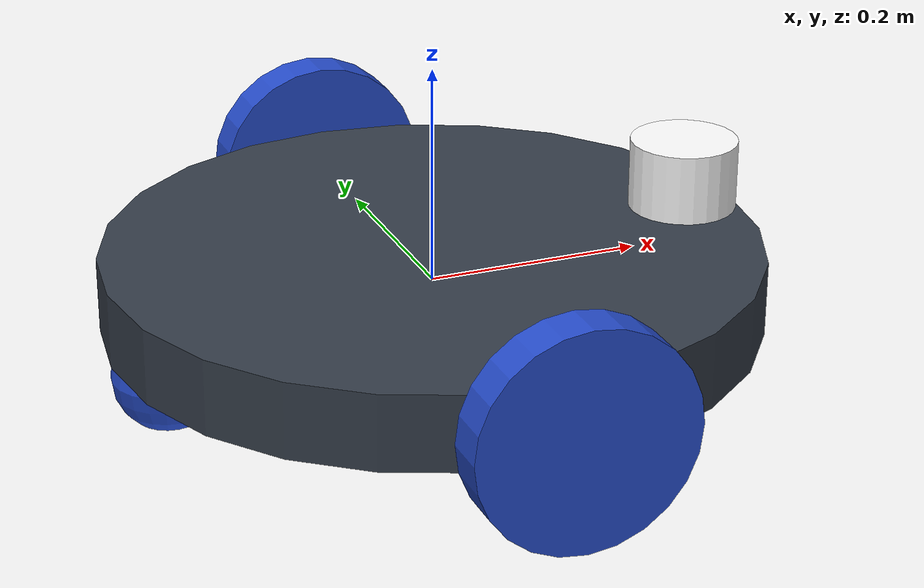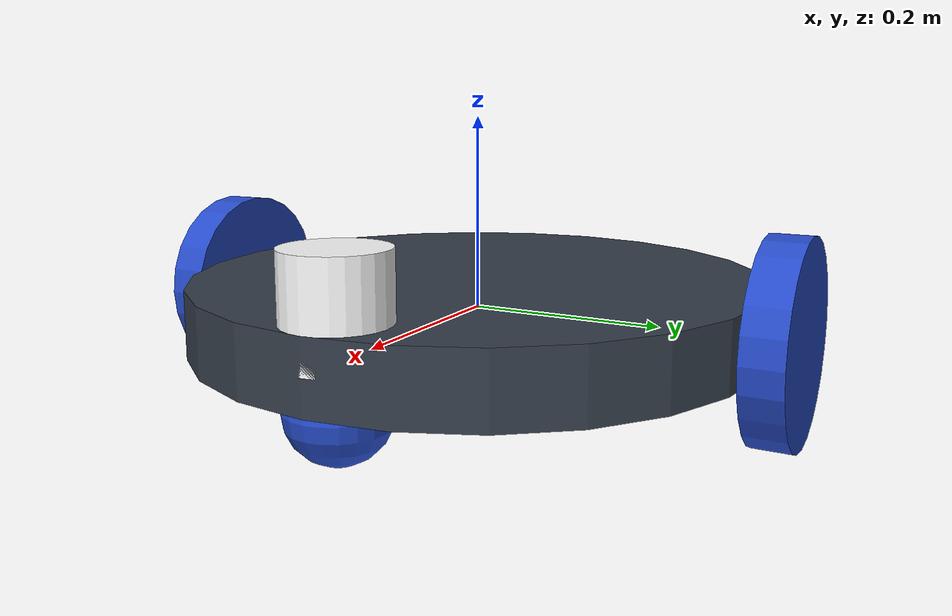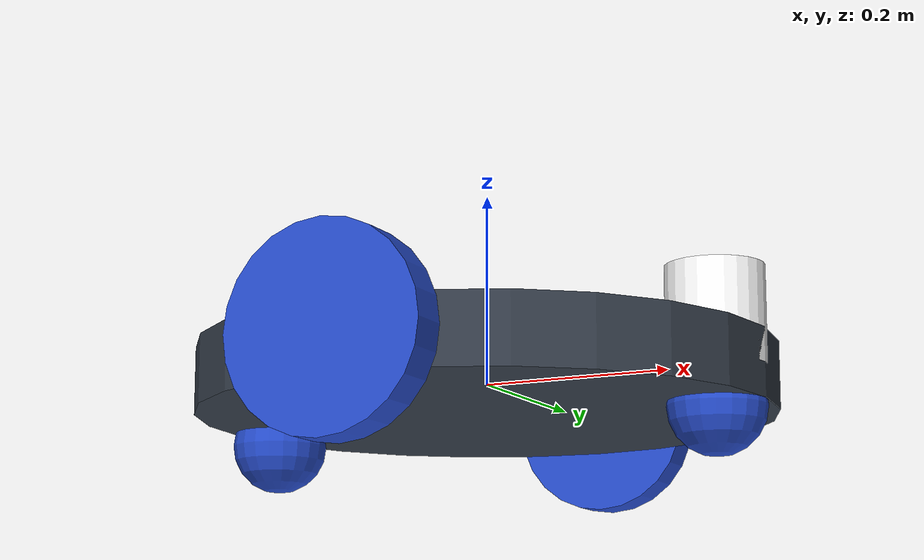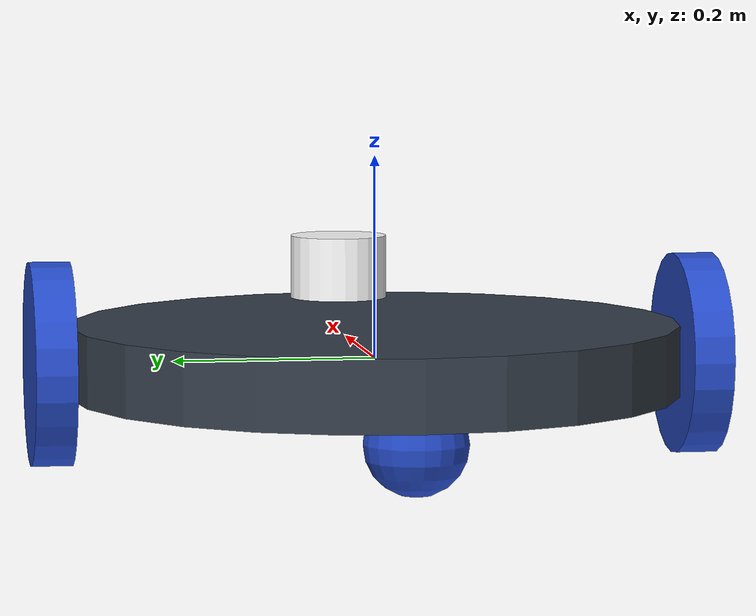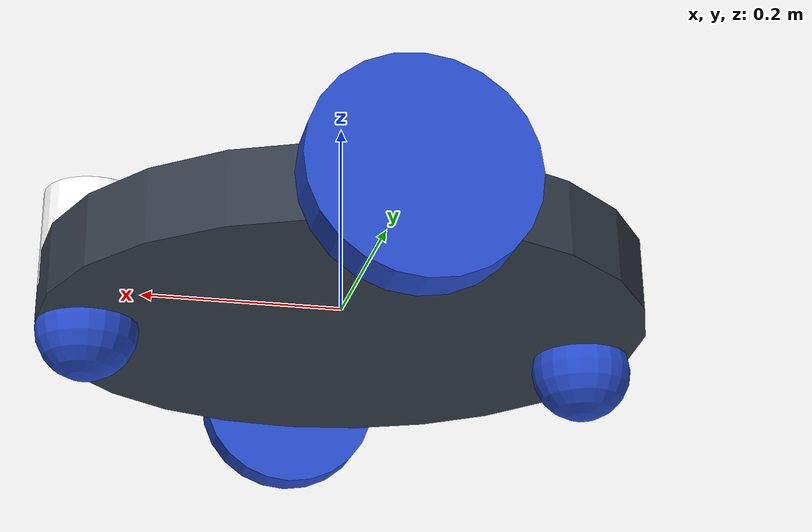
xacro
<?xml version="1.0"?>
<robot name="WRO" xmlns:xacro="https://www.ros.org/wiki/xacro" >

    <xacro:include filename="$(find robot_description)/urdf/materials.xacro" />
    <xacro:include filename="$(find robot_description)/urdf/robot.gazebo" />
    <xacro:include filename="$(find robot_description)/urdf/macro.xacro" />

    <!-- 1st Link-->>
    <link name="link_chassis">
        <pose>0 0 0.1 0 0 0</pose>

        <inertial>
            <!--inertia ixx="${mass*(3*r*r+l*l)/12}" ixy = "0" ixz = "0"
                        iyy="${mass*(3*r*r+l*l)/12}" iyz = "0" izz="${mass*(r*r)/2}" /-->
            <mass value="15"/>
            <origin rpy="0 0 0" xyz="0 0 0.1"/>
            <inertia ixx="0.2290833333" ixy = "0" ixz = "0"
                     iyy="0.2290833333" iyz = "0"
                     izz="0.45" />
        </inertial>

        <collision name="collision_chassis">
            <geometry>
                <cylinder length="0.07" radius="0.3"/>
            </geometry>
        </collision>

        <visual>
            <origin rpy="0 0 0" xyz="0 0 0"/>
            <geometry>
                <cylinder length="0.07" radius="0.3"/>
            </geometry>
            <material name="blue"/>
        </visual>
    </link>

    <link name="link_caster">
        <inertial>
            <mass value="3"/>
            <origin rpy="0 0 0" xyz="0 0 0"/>
            <inertia ixx="0.003" ixy = "0" ixz = "0"
                     iyy="0.003" iyz = "0"
                     izz="0.003" />
        </inertial>
    <!-- caster front -->
        <collision name="caster_back_collision">
          <origin rpy=" 0 0 0" xyz="0 0 0"/>
          <geometry>
            <sphere radius="0.05"/>
          </geometry>
          <surface>
            <friction>
              <ode>
                <mu>0</mu>
                <mu2>0</mu2>
                <slip1>1</slip1>
                <slip2>1</slip2>
              </ode>
            </friction>
          </surface>

        </collision>
        <visual name="caster_back_visual">
          <origin rpy=" 0 0 0" xyz="0 0 0"/>
          <geometry>
            <sphere radius="0.05"/>
          </geometry>
        </visual>
    </link>

    <joint name="caster_back_joint" type="fixed">
      <parent link="link_chassis"/>
      <child link="link_caster"/>
      <origin rpy="0 0 0" xyz="-0.25 0 -0.05"/>
    </joint>

    <link name="link_caster_front">
        <inertial>
            <mass value="1"/>
            <origin rpy="0 0 0" xyz="0 0 0"/>
            <inertia ixx="0.002" ixy = "0" ixz = "0"
                     iyy="0.002" iyz = "0"
                     izz="0.002" />
        </inertial>
    <!-- caster front -->
        <collision name="caster_front_collision">
          <origin rpy=" 0 0 0" xyz="0 0 0"/>
          <geometry>
            <sphere radius="0.05"/>
          </geometry>
          <surface>
            <friction>
              <ode>
                <mu>0</mu>
                <mu2>0</mu2>
                <slip1>1</slip1>
                <slip2>1</slip2>
              </ode>
            </friction>
          </surface>

        </collision>
        <visual name="caster_front_visual">
          <origin rpy=" 0 0 0" xyz="0 0 0"/>
          <geometry>
            <sphere radius="0.05"/>
          </geometry>
        </visual>
    </link>

    <joint name="caster_front_joint" type="fixed">
      <parent link="link_chassis"/>
      <child link="link_caster_front"/>
      <origin rpy="0 0 0" xyz="0.25 0 -0.04"/>
    </joint>

  <!-- Create Sensor link and joint -->
  <xacro:link_sensor name="sensor_laser" />
  <xacro:joint_Sensor name="Sensor_joint"  child="sensor_laser" />

  <!-- Create right wheel -->
  <xacro:link_wheel name="link_right_wheel" />
  <xacro:joint_wheel name="joint_right_wheel"  child="link_right_wheel"  origin_xyz="0 -0.32 0"  />

	 <!-- Create left wheel -->
  <xacro:link_wheel name="link_left_wheel" />
  <xacro:joint_wheel name="joint_left_wheel"   child="link_left_wheel"   origin_xyz="0 0.32 0"  />

</robot>

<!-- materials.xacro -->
<robot name="WRO" xmlns:xacro="https://www.ros.org/wiki/xacro" >
  <material name="black">
    <color rgba="0.0 0.0 0.0 1.0"/>
  </material>
  <material name="blue">
    <color rgba="0.203125 0.23828125 0.28515625 1.0"/>
  </material>
  <material name="green">
    <color rgba="0.0 0.8 0.0 1.0"/>
  </material>
  <material name="grey">
    <color rgba="0.2 0.2 0.2 1.0"/>
  </material>
  <material name="orange">
    <color rgba="1.0 0.423529411765 0.0392156862745 1.0"/>
  </material>
  <material name="brown">
    <color rgba="0.870588235294 0.811764705882 0.764705882353 1.0"/>
  </material>
  <material name="red">
    <color rgba="0.80078125 0.12890625 0.1328125 1.0"/>
  </material>
  <material name="white">
    <color rgba="1.0 1.0 1.0 1.0"/>
  </material>
</robot>

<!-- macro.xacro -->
<robot xmlns:xacro="http://www.ros.org/wiki/xacro">
    <xacro:macro name="link_wheel" params="name">
        <link name="${name}">
            <inertial>
              <mass value="0.2"/>
              <origin rpy="0 1.5707 1.5707" xyz="0 0 0"/>
              <inertia ixx="0.000526666666667" ixy="0" ixz="0" iyy="0.000526666666667" iyz="0" izz="0.001"/>
            </inertial>
            <collision name="link_right_wheel_collision">
              <origin rpy="0 1.5707 1.5707" xyz="0 0 0"/>
              <geometry>
                <cylinder length="0.04" radius="0.1"/>
              </geometry>
            </collision>
            <visual name="${name}_visual">
              <origin rpy="0 1.5707 1.5707" xyz="0 0 0"/>
              <geometry>
                <cylinder length="0.04" radius="0.1"/>
              </geometry>
            </visual>
        </link>
    </xacro:macro>

    <xacro:macro name="joint_wheel" params="name child origin_xyz">
      <joint name="${name}" type="continuous">
        <origin rpy="0 0 0" xyz="${origin_xyz}"/>
        <child link="${child}"/>
        <parent link="link_chassis"/>
        <axis rpy="0 0 0" xyz="0 1 0"/>
        <limit effort="10000" velocity="1000"/>
        <joint_properties damping="1.0" friction="1.0"/>
      </joint>
    </xacro:macro>

    <xacro:macro name="link_sensor" params="name">
       <link name="${name}">
        <inertial>
          <origin xyz="0 0 0" rpy="0 0 0" />
          <mass value="1" />
          <inertia ixx="0.001458333333" ixy="0" ixz="0"
          iyy="0.001458333333" iyz="0"
          izz="0.00125"/>
        </inertial>

        <visual>
          <origin xyz="0 0 0" rpy="0 0 0" />
          <geometry>
            <cylinder radius="0.05" length="0.1"/>
          </geometry>
          <material name="white" />
        </visual>

        <collision>
          <origin xyz="0 0 0" rpy="0 0 0"/>
          <geometry>
            <cylinder radius="0.05" length="0.1"/>
          </geometry>
        </collision>
      </link>
    </xacro:macro>

    <xacro:macro name="joint_Sensor" params="name child ">
      <joint name="joint_sensor_laser" type="fixed">
        <origin xyz="0.25 0 0.05" rpy="0 0 0"/>
        <parent link="link_chassis"/>
        <child link="${child}"/>
      </joint>
    </xacro:macro>

</robot>
